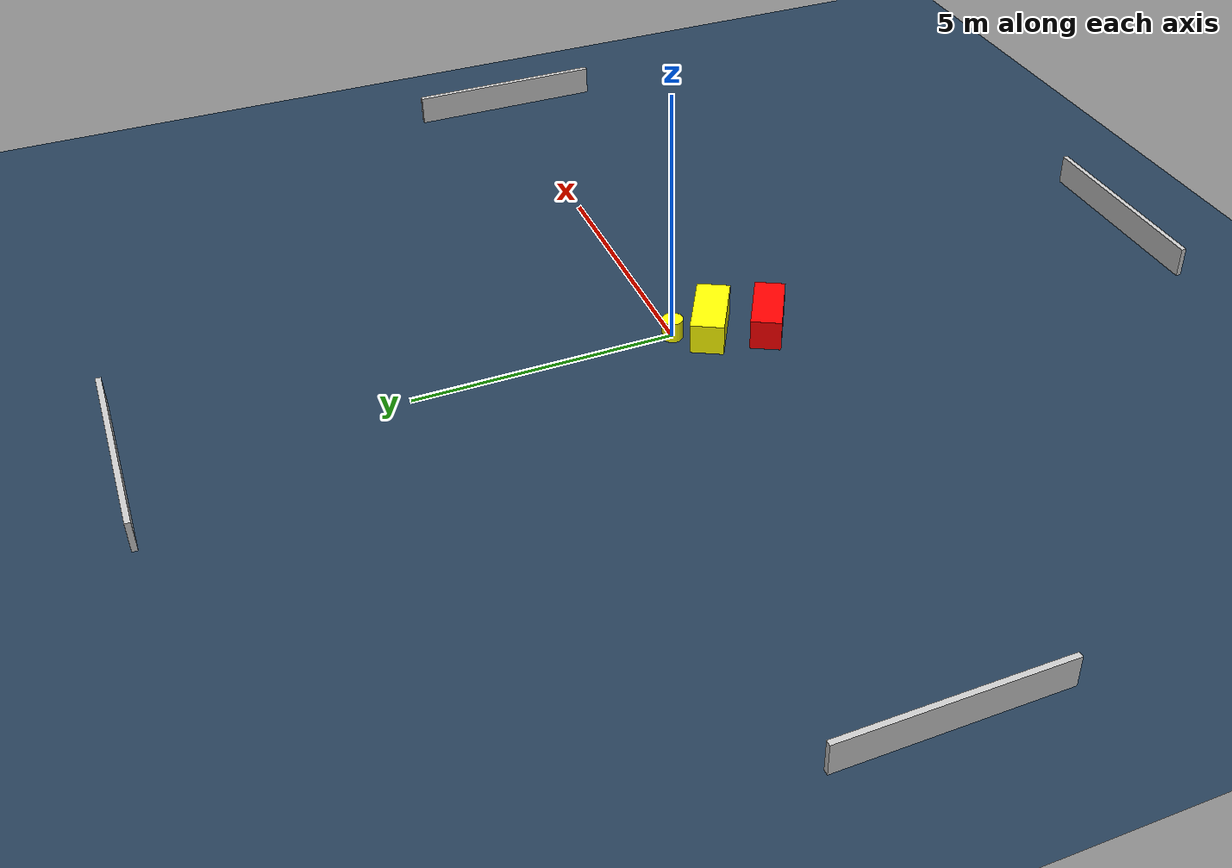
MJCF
<?xml version="1.0" ?>
<mujoco model="generated_environment">
  <option timestep="0.01" integrator="RK4" cone="elliptic"/>
  <default>
    <geom density="1"/>
  </default>
  <asset>
    <texture builtin="gradient" height="3072" name="skybox" rgb1="0.3 0.5 0.7" rgb2="0 0 0" type="skybox" width="512"/>
    <texture builtin="checker" height="300" name="groundplane" rgb1="0.2 0.3 0.4" rgb2="0.1 0.2 0.3" type="2d" width="300"/>
    <material name="groundplane" reflectance="0.2" texrepeat="5 5" texture="groundplane"/>
  </asset>
  <worldbody>
    <light dir="0 0 -1" directional="true" pos="0 0 1.5"/>
    <geom condim="3" friction="0.5 0.005 0.001" material="groundplane" name="floor" pos="0 0 0" size="0 0 0.05" type="plane"/>
    <body name="walls">
      <geom name="wall_1" condim="4" pos="-10.0 0.0 0.3" rgba="0.800000011920929 0.800000011920929 0.800000011920929 1.0" size="0.05 2.0 0.3" type="box"/>
      <geom name="wall_2" condim="4" pos="10.0 0.0 0.3" rgba="0.800000011920929 0.800000011920929 0.800000011920929 1.0" size="0.05 2.0 0.3" type="box"/>
      <geom name="wall_3" condim="4" pos="0.0 -10.0 0.3" rgba="0.800000011920929 0.800000011920929 0.800000011920929 1.0" size="2.0 0.05 0.3" type="box"/>
      <geom name="wall_4" condim="4" pos="0.0 10.0 0.3" rgba="0.800000011920929 0.800000011920929 0.800000011920929 1.0" size="2.0 0.05 0.3" type="box"/>
    </body>
    <body name="robot">
      <joint name="joint_x" type="slide" pos="0 0 0" axis="1 0 0"/>
      <joint name="joint_y" type="slide" pos="0 0 0" axis="0 1 0"/>
      <geom name="robot" type="cylinder" pos="0.0 0.0 0.2" size="0.2 0.2 0.0" mass="5.0" friction="1.0 0.005 0.0001" condim="4" rgba="1.0 1.0 0.0 1.0"/>
    </body>
    <body name="obstacle_1_movable">
      <geom name="obstacle_1_movable" condim="4" pos="-0.1321178413287959 -0.7055922631005934 0.3" euler="0 0 330.9109354954297" friction="0.0 0.005 0.001" rgba="1.0 1.0 0.0 1.0" size="0.6918827973501923 0.31595130879517885 0.3" type="box" mass="0.1"/>
      <joint type="free"/>
    </body>
    <body name="obstacle_2_static">
      <geom name="obstacle_2_static" condim="4" pos="-0.46460766238332185 -1.7330325298165514 0.3" euler="0 0 241.17144679812952" friction="0.0 0.005 0.001" rgba="1.0 0.0 0.0 1.0" size="0.28894044397575724 0.6511753585631954 0.3" type="box"/>
    </body>
  </worldbody>
  <actuator>
    <motor name="actuator_x" joint="joint_x" gear="1" ctrlrange="-1 1"/>
    <motor name="actuator_y" joint="joint_y" gear="1" ctrlrange="-1 1"/>
  </actuator>
</mujoco>
